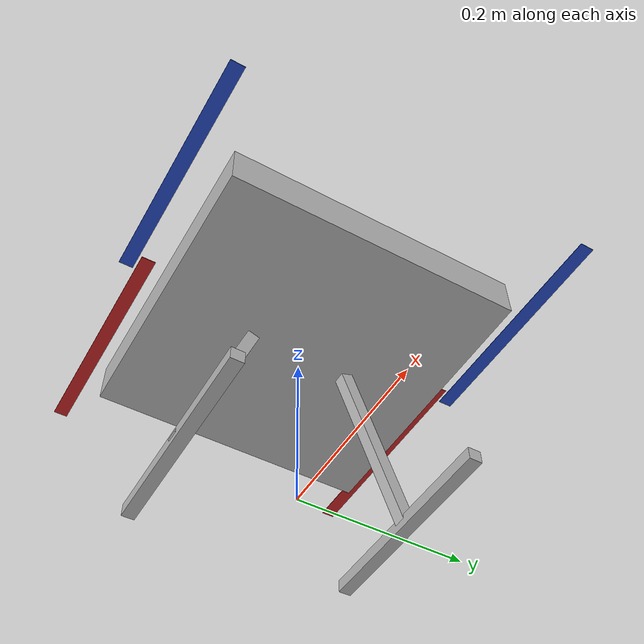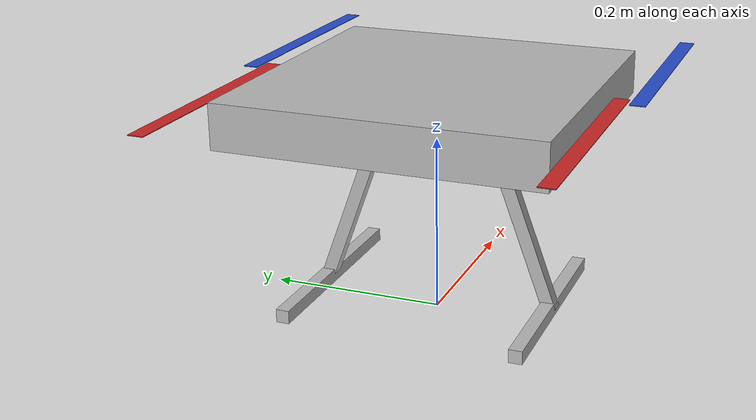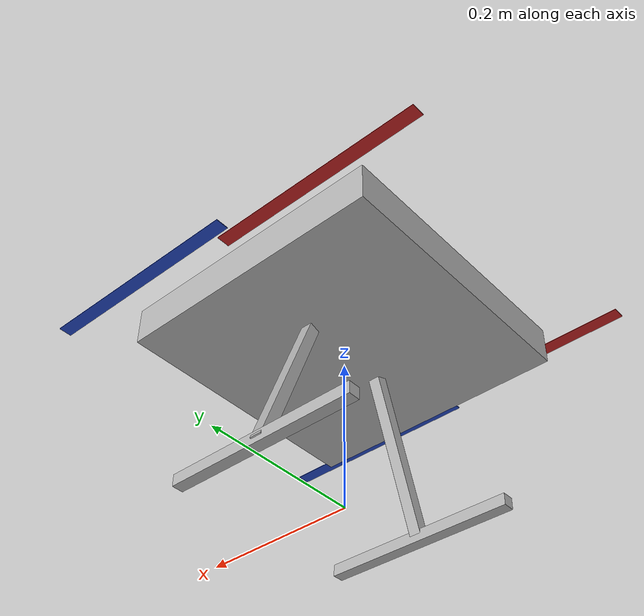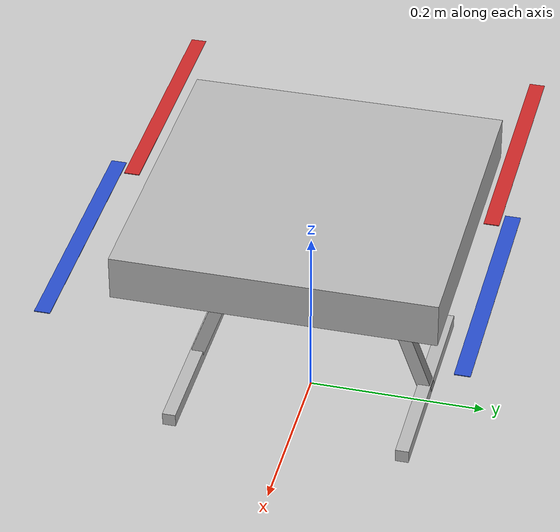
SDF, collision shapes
<?xml version="1.0" encoding="UTF-8"?>
<sdf version='1.9'>
  <model name='x3'>

    <pose>0 0 .24 0 0 0</pose>
    <self_collide>false</self_collide>
    <static>false</static>
    <link name="base_link">
      <inertial>
        <mass>1.5</mass>
        <inertia>
          <ixx>0.02166666666666667</ixx>
          <ixy>0</ixy>
          <ixz>0</ixz>
          <iyy>0.02166666666666667</iyy>
          <iyz>0</iyz>
          <izz>0.04000000000000001</izz>
        </inertia>
      </inertial>
      <gravity>true</gravity>
      <velocity_decay />
      <visual name='X3_base_link_inertia_visual'>
        <pose frame=''>0 0 0 0 -0 0</pose>
        <geometry>
          <mesh>
            <scale>1 1 1</scale>
            <uri>model://x3/meshes/x3.dae</uri>
          </mesh>
        </geometry>
      </visual>
      <collision name="base_link_collision_0">
        <pose>0 0 .007 0 0 0</pose>
        <geometry>
          <box>
            <size>0.35355339059327373 0.35355339059327373 0.05</size>
          </box>
        </geometry>
        <surface>
          <contact>
            <ode>
              <min_depth>0.001</min_depth>
              <max_vel>0</max_vel>
            </ode>
          </contact>
          <friction>
            <ode />
          </friction>
        </surface>
      </collision>
      <collision name="base_link_collision_1">
        <pose>0 -0.098 -.123 -0.35 0 0</pose>
        <geometry>
          <box>
            <size>0.015 0.015 0.21</size>
          </box>
        </geometry>
        <surface>
          <contact>
            <ode>
              <min_depth>0.001</min_depth>
              <max_vel>0</max_vel>
            </ode>
          </contact>
          <friction>
            <ode />
          </friction>
        </surface>
      </collision>
      <collision name="base_link_collision_2">
        <pose>0 0.098 -.123 0.35 0 0</pose>
        <geometry>
          <box>
            <size>0.015 0.015 0.21</size>
          </box>
        </geometry>
        <surface>
          <contact>
            <ode>
              <min_depth>0.001</min_depth>
              <max_vel>0</max_vel>
            </ode>
          </contact>
          <friction>
            <ode />
          </friction>
        </surface>
      </collision>
      <collision name="base_link_collision_3">
        <pose>0 -0.132 -.2195 0 0 0</pose>
        <geometry>
          <box>
            <size>0.25 0.015 0.015</size>
          </box>
        </geometry>
        <surface>
          <contact>
            <ode>
              <min_depth>0.001</min_depth>
              <max_vel>0</max_vel>
            </ode>
          </contact>
          <friction>
            <ode />
          </friction>
        </surface>
      </collision>
      <collision name="base_link_collision_4">
        <pose>0 0.132 -.2195 0 0 0</pose>
        <geometry>
          <box>
            <size>0.25 0.015 0.015</size>
          </box>
        </geometry>
        <surface>
          <contact>
            <ode>
              <min_depth>0.001</min_depth>
              <max_vel>0</max_vel>
            </ode>
          </contact>
          <friction>
            <ode />
          </friction>
        </surface>
      </collision>
      <sensor name="air_pressure_sensor" type="air_pressure">
        <gz_frame_id>base_link</gz_frame_id>
        <always_on>1</always_on>
        <update_rate>50</update_rate>
        <air_pressure>
          <!-- Noise modeled after BMP390 -->
          <pressure>
            <noise type="gaussian">
              <mean>0</mean>
              <stddev>3</stddev>
            </noise>
          </pressure>
        </air_pressure>
      </sensor>
      <sensor name="magnetometer_sensor" type="magnetometer">
        <gz_frame_id>base_link</gz_frame_id>
        <always_on>1</always_on>
        <update_rate>100</update_rate>
        <magnetometer>
          <!-- TODO: update to fix units and coordinate system when we move past Harmonic -->
          <!-- See https://github.com/gazebosim/gz-sim/pull/2460 -->
          <!-- 3mgauss RMS: NOTE: noise is in tesla but sensor reports data in gauss -->
          <!-- Noise modeled after IIS2MDC -->
          <x>
            <noise type="gaussian">
              <stddev>0.0001</stddev>
            </noise>
          </x>
          <y>
            <noise type="gaussian">
              <stddev>0.0001</stddev>
            </noise>
          </y>
          <z>
            <noise type="gaussian">
              <stddev>0.0001</stddev>
            </noise>
          </z>
        </magnetometer>
      </sensor>
      <sensor name="imu_sensor" type="imu">
        <gz_frame_id>base_link</gz_frame_id>
        <always_on>1</always_on>
        <update_rate>250</update_rate>
        <imu>
          <angular_velocity>
            <!-- Noise modeled after IIM42653 -->
            <!-- 0.05 deg/s converted to rad/s -->
            <x>
              <noise type="gaussian">
                <mean>0.0</mean>
                <stddev>0.0008726646</stddev>
              </noise>
            </x>
            <y>
              <noise type="gaussian">
                <mean>0.0</mean>
                <stddev>0.0008726646</stddev>
              </noise>
            </y>
            <z>
              <noise type="gaussian">
                <mean>0.0</mean>
                <stddev>0.0008726646</stddev>
              </noise>
            </z>
          </angular_velocity>
          <linear_acceleration>
            <!-- Noise modeled after IIM42653 -->
            <!-- X & Y axis: 0.65 mg-rms converted to m/ss -->
            <x>
              <noise type="gaussian">
                <mean>0.0</mean>
                <stddev>0.00637</stddev>
              </noise>
            </x>
            <y>
              <noise type="gaussian">
                <mean>0.0</mean>
                <stddev>0.00637</stddev>
              </noise>
            </y>
            <!-- Z axis: 0.70 mg-rms converted to m/ss-->
            <z>
              <noise type="gaussian">
                <mean>0.0</mean>
                <stddev>0.00686</stddev>
              </noise>
            </z>
          </linear_acceleration>
        </imu>
      </sensor>
      <sensor name="navsat_sensor" type="navsat">
        <gz_frame_id>base_link</gz_frame_id>
        <always_on>1</always_on>
        <update_rate>30</update_rate>
      </sensor>
    </link>
    <link name="rotor_0">
      <gravity>true</gravity>
      <self_collide>false</self_collide>
      <velocity_decay />
      <pose frame=''>0.13 -0.22 0.023 0 -0 0</pose>
      <inertial>
        <mass>0.016076923076923075</mass>
        <inertia>
          <ixx>3.8464910483993325e-07</ixx>
          <iyy>2.6115851691700804e-05</iyy>
          <izz>2.649858234714004e-05</izz>
        </inertia>
      </inertial>
      <visual name='X3_rotor_0_visual'>
        <pose frame=''>0 0 0 0 -0 0</pose>
        <geometry>
          <mesh>
            <scale>0.1 0.1 0.1</scale>
            <uri>model://x3/meshes/propeller_ccw.dae</uri>
          </mesh>
        </geometry>
        <material>
          <script>
            <name>Gazebo/Blue</name>
            <uri>file://media/materials/scripts/gazebo.material</uri>
          </script>
        </material>
      </visual>
      <collision name="rotor_0_collision">
        <pose>0 0 0 0 0 0 </pose>
        <geometry>
          <box>
            <size>0.2792307692307692 0.016923076923076923 0.0008461538461538462</size>
          </box>
        </geometry>
        <surface>
          <contact>
            <ode>
              <min_depth>0.001</min_depth>
              <max_vel>0</max_vel>
            </ode>
          </contact>
          <friction>
            <ode />
          </friction>
        </surface>
      </collision>
    </link>
    <joint name="rotor_0_joint" type="revolute">
      <parent>base_link</parent>
      <child>rotor_0</child>
      <axis>
        <xyz>0 0 1</xyz>
        <limit>
          <lower>-1e+16</lower>
          <upper>1e+16</upper>
        </limit>
        <dynamics>
          <spring_reference>0</spring_reference>
          <spring_stiffness>0</spring_stiffness>
        </dynamics>
      </axis>
    </joint>
    <link name="rotor_1">
      <gravity>true</gravity>
      <self_collide>false</self_collide>
      <velocity_decay />
      <pose frame=''>-0.13 0.2 0.023 0 -0 0</pose>
      <inertial>
        <mass>0.016076923076923075</mass>
        <inertia>
          <ixx>3.8464910483993325e-07</ixx>
          <iyy>2.6115851691700804e-05</iyy>
          <izz>2.649858234714004e-05</izz>
        </inertia>
      </inertial>
      <visual name='X3_rotor_1_visual'>
        <pose frame=''>0 0 0 0 -0 0</pose>
        <geometry>
          <mesh>
            <scale>0.1 0.1 0.1</scale>
            <uri>model://x3/meshes/propeller_ccw.dae</uri>
          </mesh>
        </geometry>
        <material>
          <script>
            <name>Gazebo/Red</name>
            <uri>file://media/materials/scripts/gazebo.material</uri>
          </script>
        </material>
      </visual>
      <collision name="rotor_1_collision">
        <pose>0 0 0 0 0 0 </pose>
        <geometry>
          <box>
            <size>0.2792307692307692 0.016923076923076923 0.0008461538461538462</size>
          </box>
        </geometry>
        <surface>
          <contact>
            <ode>
              <min_depth>0.001</min_depth>
              <max_vel>0</max_vel>
            </ode>
          </contact>
          <friction>
            <ode />
          </friction>
        </surface>
      </collision>
    </link>
    <joint name="rotor_1_joint" type="revolute">
      <parent>base_link</parent>
      <child>rotor_1</child>
      <axis>
        <xyz>0 0 1</xyz>
        <limit>
          <lower>-1e+16</lower>
          <upper>1e+16</upper>
        </limit>
        <dynamics>
          <spring_reference>0</spring_reference>
          <spring_stiffness>0</spring_stiffness>
        </dynamics>
      </axis>
    </joint>
    <link name="rotor_2">
      <gravity>true</gravity>
      <self_collide>false</self_collide>
      <velocity_decay />
      <pose frame=''>0.13 0.22 0.023 0 -0 0</pose>
      <inertial>
        <mass>0.016076923076923075</mass>
        <inertia>
          <ixx>3.8464910483993325e-07</ixx>
          <iyy>2.6115851691700804e-05</iyy>
          <izz>2.649858234714004e-05</izz>
        </inertia>
      </inertial>
      <visual name='X3_rotor_2_visual'>
        <pose frame=''>0 0 0 0 -0 0</pose>
        <geometry>
          <mesh>
            <scale>0.1 0.1 0.1</scale>
            <uri>model://x3/meshes/propeller_cw.dae</uri>
          </mesh>
        </geometry>
        <material>
          <script>
            <name>Gazebo/Blue</name>
            <uri>file://media/materials/scripts/gazebo.material</uri>
          </script>
        </material>
      </visual>
      <collision name="rotor_2_collision">
        <pose>0 0 0 0 0 0 </pose>
        <geometry>
          <box>
            <size>0.2792307692307692 0.016923076923076923 0.0008461538461538462</size>
          </box>
        </geometry>
        <surface>
          <contact>
            <ode>
              <min_depth>0.001</min_depth>
              <max_vel>0</max_vel>
            </ode>
          </contact>
          <friction>
            <ode />
          </friction>
        </surface>
      </collision>
    </link>
    <joint name="rotor_2_joint" type="revolute">
      <parent>base_link</parent>
      <child>rotor_2</child>
      <axis>
        <xyz>0 0 1</xyz>
        <limit>
          <lower>-1e+16</lower>
          <upper>1e+16</upper>
        </limit>
        <dynamics>
          <spring_reference>0</spring_reference>
          <spring_stiffness>0</spring_stiffness>
        </dynamics>
      </axis>
    </joint>
    <link name="rotor_3">
      <gravity>true</gravity>
      <self_collide>false</self_collide>
      <velocity_decay />
      <pose frame=''>-0.13 -0.2 0.023 0 -0 0</pose>
      <inertial>
        <mass>0.016076923076923075</mass>
        <inertia>
          <ixx>3.8464910483993325e-07</ixx>
          <iyy>2.6115851691700804e-05</iyy>
          <izz>2.649858234714004e-05</izz>
        </inertia>
      </inertial>
      <visual name='X3_rotor_3_visual'>
        <pose frame=''>0 0 0 0 -0 0</pose>
        <geometry>
          <mesh>
            <scale>0.1 0.1 0.1</scale>
            <uri>model://x3/meshes/propeller_cw.dae</uri>
          </mesh>
        </geometry>
        <material>
          <script>
            <name>Gazebo/Red</name>
            <uri>file://media/materials/scripts/gazebo.material</uri>
          </script>
        </material>
      </visual>
      <collision name="rotor_3_collision">
        <pose>0 0 0 0 0 0 </pose>
        <geometry>
          <box>
            <size>0.2792307692307692 0.016923076923076923 0.0008461538461538462</size>
          </box>
        </geometry>
        <surface>
          <contact>
            <ode>
              <min_depth>0.001</min_depth>
              <max_vel>0</max_vel>
            </ode>
          </contact>
          <friction>
            <ode />
          </friction>
        </surface>
      </collision>
    </link>
    <joint name="rotor_3_joint" type="revolute">
      <parent>base_link</parent>
      <child>rotor_3</child>
      <axis>
        <xyz>0 0 1</xyz>
        <limit>
          <lower>-1e+16</lower>
          <upper>1e+16</upper>
        </limit>
        <dynamics>
          <spring_reference>0</spring_reference>
          <spring_stiffness>0</spring_stiffness>
        </dynamics>
      </axis>
    </joint>

    <plugin filename="gz-sim-multicopter-motor-model-system"
      name="gz::sim::systems::MulticopterMotorModel">
      <jointName>rotor_0_joint</jointName>
      <linkName>rotor_0</linkName>
      <turningDirection>ccw</turningDirection>
      <timeConstantUp>0.0125</timeConstantUp>
      <timeConstantDown>0.025</timeConstantDown>
      <maxRotVelocity>1000.0</maxRotVelocity>
      <motorConstant>8.54858e-06</motorConstant>
      <momentConstant>0.016</momentConstant>
      <commandSubTopic>command/motor_speed</commandSubTopic>
      <motorNumber>0</motorNumber>
      <rotorDragCoefficient>8.06428e-05</rotorDragCoefficient>
      <rollingMomentCoefficient>1e-06</rollingMomentCoefficient>
      <rotorVelocitySlowdownSim>10</rotorVelocitySlowdownSim>
      <motorType>velocity</motorType>
    </plugin>
    <plugin filename="gz-sim-multicopter-motor-model-system"
      name="gz::sim::systems::MulticopterMotorModel">
      <jointName>rotor_1_joint</jointName>
      <linkName>rotor_1</linkName>
      <turningDirection>ccw</turningDirection>
      <timeConstantUp>0.0125</timeConstantUp>
      <timeConstantDown>0.025</timeConstantDown>
      <maxRotVelocity>1000.0</maxRotVelocity>
      <motorConstant>8.54858e-06</motorConstant>
      <momentConstant>0.016</momentConstant>
      <commandSubTopic>command/motor_speed</commandSubTopic>
      <motorNumber>1</motorNumber>
      <rotorDragCoefficient>8.06428e-05</rotorDragCoefficient>
      <rollingMomentCoefficient>1e-06</rollingMomentCoefficient>
      <rotorVelocitySlowdownSim>10</rotorVelocitySlowdownSim>
      <motorType>velocity</motorType>
    </plugin>
    <plugin filename="gz-sim-multicopter-motor-model-system"
      name="gz::sim::systems::MulticopterMotorModel">
      <jointName>rotor_2_joint</jointName>
      <linkName>rotor_2</linkName>
      <turningDirection>cw</turningDirection>
      <timeConstantUp>0.0125</timeConstantUp>
      <timeConstantDown>0.025</timeConstantDown>
      <maxRotVelocity>1000.0</maxRotVelocity>
      <motorConstant>8.54858e-06</motorConstant>
      <momentConstant>0.016</momentConstant>
      <commandSubTopic>command/motor_speed</commandSubTopic>
      <motorNumber>2</motorNumber>
      <rotorDragCoefficient>8.06428e-05</rotorDragCoefficient>
      <rollingMomentCoefficient>1e-06</rollingMomentCoefficient>
      <rotorVelocitySlowdownSim>10</rotorVelocitySlowdownSim>
      <motorType>velocity</motorType>
    </plugin>
    <plugin filename="gz-sim-multicopter-motor-model-system"
      name="gz::sim::systems::MulticopterMotorModel">
      <jointName>rotor_3_joint</jointName>
      <linkName>rotor_3</linkName>
      <turningDirection>cw</turningDirection>
      <timeConstantUp>0.0125</timeConstantUp>
      <timeConstantDown>0.025</timeConstantDown>
      <maxRotVelocity>1000.0</maxRotVelocity>
      <motorConstant>8.54858e-06</motorConstant>
      <momentConstant>0.016</momentConstant>
      <commandSubTopic>command/motor_speed</commandSubTopic>
      <motorNumber>3</motorNumber>
      <rotorDragCoefficient>8.06428e-05</rotorDragCoefficient>
      <rollingMomentCoefficient>1e-06</rollingMomentCoefficient>
      <rotorVelocitySlowdownSim>10</rotorVelocitySlowdownSim>
      <motorType>velocity</motorType>
    </plugin>
    <plugin filename="MotorFailurePlugin"
      name="gz::sim::systems::MotorFailureSystem">
    </plugin>
  </model>
</sdf>
